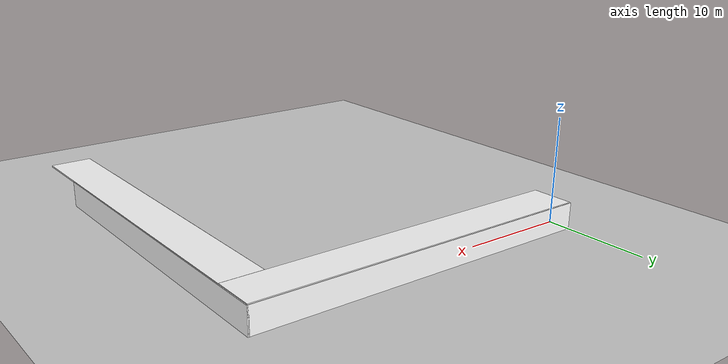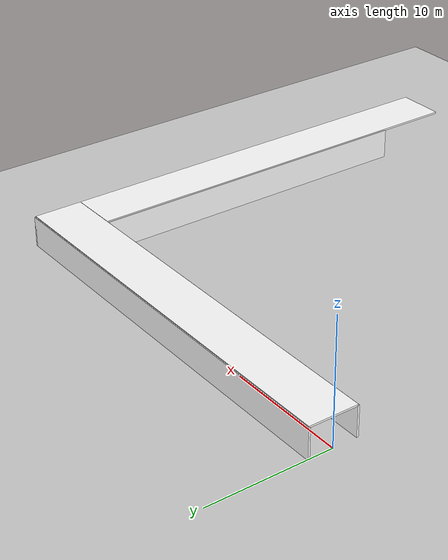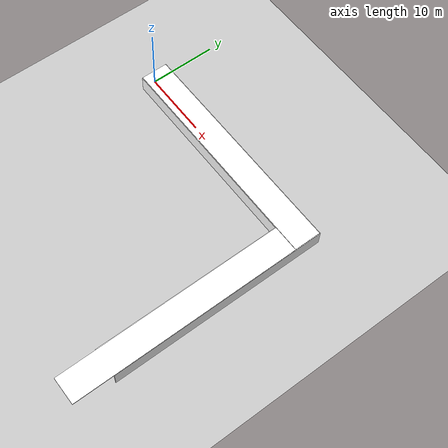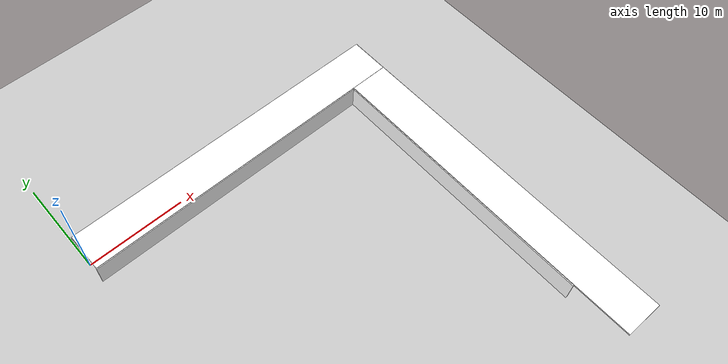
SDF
<sdf version="1.6">
 <world name="default">
  <physics name="default_physics" default="0" type="ode">
   <ode>
    <solver>
     <type>quick</type>
     <iters>100</iters>
     <sor>1</sor>
     <use_dynamic_moi_rescaling>0</use_dynamic_moi_rescaling>
    </solver>
    <constraints>
     <cfm>0</cfm>
     <erp>0.2</erp>
     <contact_max_correcting_vel>0.1</contact_max_correcting_vel>
     <contact_surface_layer>0</contact_surface_layer>
    </constraints>
   </ode>
   <real_time_update_rate>-1</real_time_update_rate>
   <max_step_size>0.001</max_step_size>
   <real_time_factor>1</real_time_factor>
  </physics>
  <gravity>0 0 -9.8</gravity>
  <light name="sun" type="directional">
   <pose>0 0 10 0 -0 0</pose>
   <diffuse>0.8 0.8 0.8 1</diffuse>
   <specular>0.2 0.2 0.2 1</specular>
   <attenuation>
    <range>1000</range>
    <constant>0.9</constant>
    <linear>0.01</linear>
    <quadratic>0.001</quadratic>
   </attenuation>
   <direction>-0.5 0.1 -0.9</direction>
  </light>
  <model name="ground_plane">
   <static>1</static>
   <link name="link">
    <collision name="collision">
     <geometry><plane><normal>0 0 1</normal><size>5000 5000</size></plane></geometry>
     <surface><friction><ode><mu>1</mu><mu2>2</mu2></ode></friction></surface>
    </collision>
    <visual name="runway">
     <cast_shadows>0</cast_shadows>
     <geometry><plane><normal>0 0 1</normal><size>700 700</size></plane></geometry>
     <material>
      <script><uri>file://media/materials/scripts/gazebo.material</uri><name>Gazebo/Gray</name></script>
     </material>
    </visual>
   </link>
  </model>
  <model name="fast_planner_tests">
   <link name="fast_planner_tests::Wall_0">
    <collision name="Wall_0_Collision">
     <geometry><box><size>30.103 0.15 2.5</size></box></geometry>
     <pose>0 0 1.25 0 -0 0</pose>
    </collision>
    <visual name="Wall_0_Visual">
     <pose>0 0 1.25 0 -0 0</pose>
     <geometry><box><size>30.103 0.15 2.5</size></box></geometry>
     <material>
      <script>
       <uri>model://floor/materials/scripts</uri>
       <uri>model://floor/materials/textures</uri>
       <name>floor</name>
      </script>
      <ambient>1 1 1 1</ambient>
     </material>
     <meta><layer>0</layer></meta>
    </visual>
    <pose>15.0235 -2 0 0 -0 0</pose>
   </link>
   <link name="fast_planner_tests::Wall_2">
    <collision name="Wall_2_Collision">
     <geometry><box><size>34.15 0.15 2.5</size></box></geometry>
     <pose>0 0 1.25 0 -0 0</pose>
    </collision>
    <visual name="Wall_2_Visual">
     <pose>0 0 1.25 0 -0 0</pose>
     <geometry><box><size>34.15 0.15 2.5</size></box></geometry>
     <material>
      <script>
       <uri>model://floor/materials/scripts</uri>
       <uri>model://floor/materials/textures</uri>
       <name>floor</name>
      </script>
      <ambient>1 1 1 1</ambient>
     </material>
     <meta><layer>0</layer></meta>
    </visual>
    <pose>17 2 0 0 -0 0</pose>
   </link>
   <link name="fast_planner_tests::Wall_4">
    <collision name="Wall_4_Collision">
     <geometry><box><size>32.15 0.15 2.5</size></box></geometry>
     <pose>0 0 1.25 0 -0 0</pose>
    </collision>
    <visual name="Wall_4_Visual">
     <pose>0 0 1.25 0 -0 0</pose>
     <geometry><box><size>32.15 0.15 2.5</size></box></geometry>
     <material>
      <script>
       <uri>model://floor/materials/scripts</uri>
       <uri>model://floor/materials/textures</uri>
       <name>floor</name>
      </script>
      <ambient>1 1 1 1</ambient>
     </material>
     <meta><layer>0</layer></meta>
    </visual>
    <pose>34 -14 0 0 0 -1.5708</pose>
   </link>
   <link name="fast_planner_tests::Wall_7">
    <collision name="Wall_7_Collision">
     <geometry><box><size>28.15 0.15 2.5</size></box></geometry>
     <pose>0 0 1.25 0 -0 0</pose>
    </collision>
    <visual name="Wall_7_Visual">
     <pose>0 0 1.25 0 -0 0</pose>
     <geometry><box><size>28.15 0.15 2.5</size></box></geometry>
     <material>
      <script>
       <uri>model://floor/materials/scripts</uri>
       <uri>model://floor/materials/textures</uri>
       <name>floor</name>
      </script>
      <ambient>1 1 1 1</ambient>
     </material>
     <meta><layer>0</layer></meta>
    </visual>
    <pose>30 -16 0 0 0 -1.5708</pose>
   </link>
   <static>1</static>
  </model>
  <model name="ceiling">
   <link name="ceiling::Wall_0">
    <collision name="Wall_0_Collision">
     <geometry><box><size>34 0.15 4</size></box></geometry>
     <pose>0 0 1.25 0 -0 0</pose>
    </collision>
    <visual name="Wall_0_Visual">
     <pose>0 0 1.25 0 -0 0</pose>
     <geometry><box><size>34 0.15 4</size></box></geometry>
     <material>
      <script>
       <uri>model://floor/materials/scripts</uri>
       <uri>model://floor/materials/textures</uri>
       <name>floor</name>
      </script>
      <ambient>1 1 1 1</ambient>
     </material>
     <meta><layer>0</layer></meta>
    </visual>
    <pose>50 0 0 0 -0 0</pose>
   </link>
   <static>1</static>
   <pose>-33 1.25 2.5 1.57 -0 0</pose>
  </model>
  <model name="ceiling">
   <link name="ceiling::Wall_0">
    <collision name="Wall_0_Collision">
     <geometry><box><size>34 0.15 4</size></box></geometry>
     <pose>0 0 1.25 0 -0 0</pose>
    </collision>
    <visual name="Wall_0_Visual">
     <pose>0 0 1.25 0 -0 0</pose>
     <geometry><box><size>34 0.15 4</size></box></geometry>
     <material>
      <script>
       <uri>model://floor/materials/scripts</uri>
       <uri>model://floor/materials/textures</uri>
       <name>floor</name>
      </script>
      <ambient>1 1 1 1</ambient>
     </material>
     <meta><layer>0</layer></meta>
    </visual>
    <pose>50 0 0 0 -0 0</pose>
   </link>
   <static>1</static>
   <pose>-33 1.25 2.5 1.57 -0 0</pose>
  </model>
  <magnetic_field>6e-06 2.3e-05 -4.2e-05</magnetic_field>
  <atmosphere type="adiabatic"/>
  <scene><ambient>0.4 0.4 0.4 1</ambient><background>0.7 0.7 0.7 1</background><shadows>1</shadows></scene>
  <audio><device>default</device></audio>
  <spherical_coordinates>
   <surface_model>EARTH_WGS84</surface_model>
   <latitude_deg>0</latitude_deg>
   <longitude_deg>0</longitude_deg>
   <elevation>0</elevation>
   <heading_deg>0</heading_deg>
  </spherical_coordinates>
  <model name="ceiling_clone">
   <link name="ceiling::Wall_0">
    <collision name="Wall_0_Collision">
     <geometry><box><size>34 0.15 4</size></box></geometry>
     <pose>0 0 1.25 0 -0 0</pose>
    </collision>
    <visual name="Wall_0_Visual">
     <pose>0 0 1.25 0 -0 0</pose>
     <geometry><box><size>34 0.15 4</size></box></geometry>
     <material>
      <script>
       <uri>model://floor/materials/scripts</uri>
       <uri>model://floor/materials/textures</uri>
       <name>floor</name>
      </script>
      <ambient>1 1 1 1</ambient>
     </material>
     <meta><layer>0</layer></meta>
    </visual>
    <pose>50 0 0 0 -0 0</pose>
   </link>
   <static>1</static>
   <pose>33.238 30.98 2.5 1.57 0 -1.57</pose>
  </model>
 </world>
</sdf>
